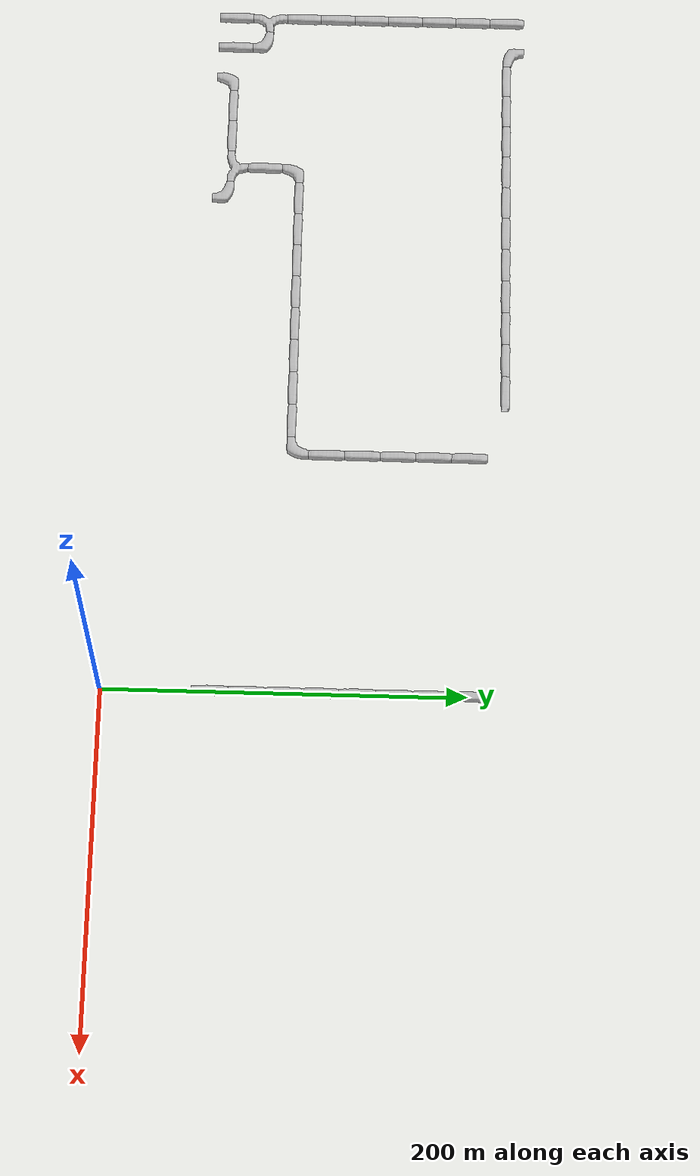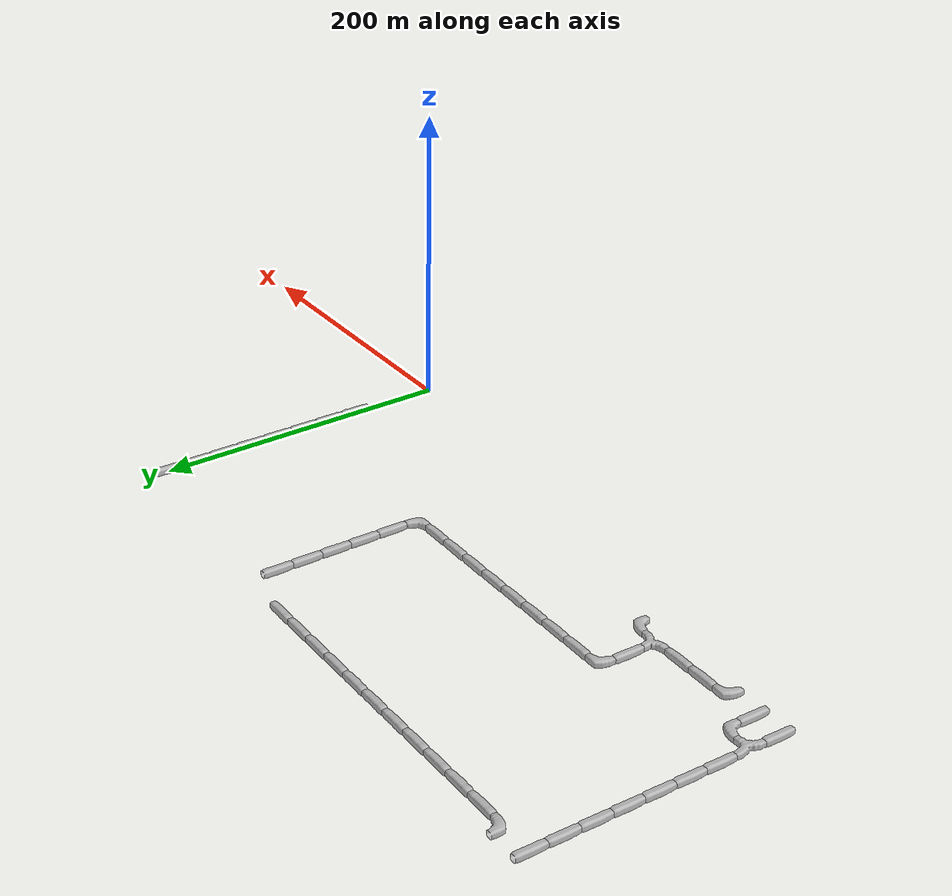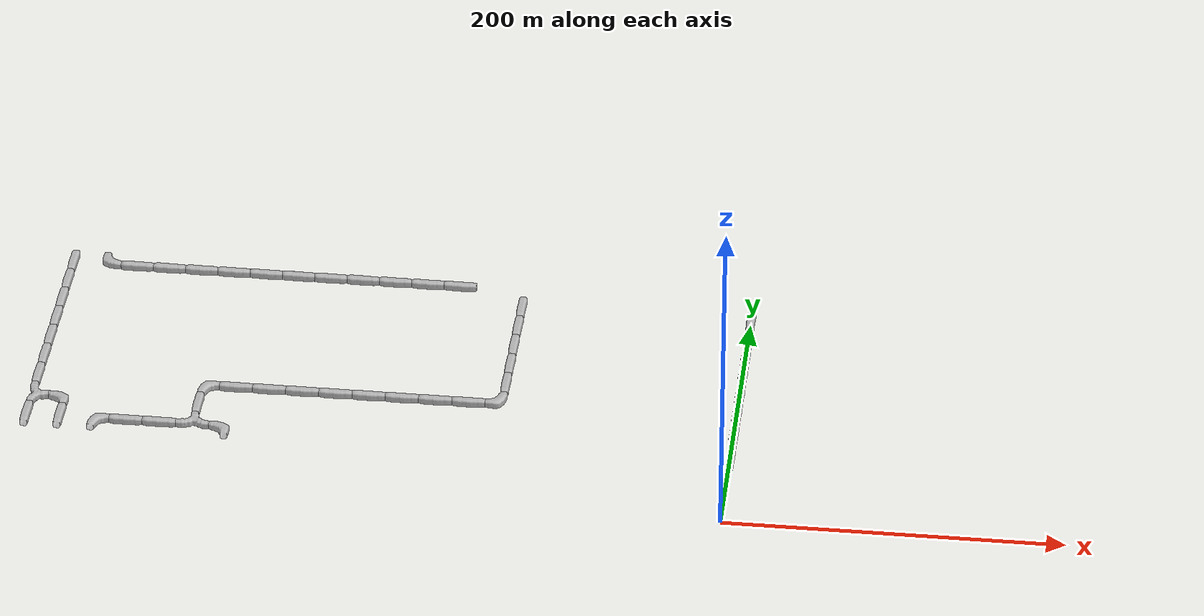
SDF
<sdf version="1.6">
 <world name="cave_16000_4">
  <include>
   <static>true</static>
   <name>cave_-15_3</name>
   <pose>-300 60 0 0 0 3.141592653589793</pose>
   <uri>model://cave_L_20m</uri>
  </include>
  <include>
   <static>true</static>
   <name>cave_-16_3</name>
   <pose>-320 60 0 0 0 0.0</pose>
   <uri>model://cave_3way_20m</uri>
  </include>
  <include>
   <static>true</static>
   <name>cave_-17_3</name>
   <pose>-340 60 0 0 0 1.5707963267948966</pose>
   <uri>model://cave_straight_20m</uri>
  </include>
  <include>
   <static>true</static>
   <name>cave_-18_3</name>
   <pose>-360 60 0 0 0 1.5707963267948966</pose>
   <uri>model://cave_straight_20m</uri>
  </include>
  <include>
   <static>true</static>
   <name>cave_-19_3</name>
   <pose>-380 60 0 0 0 -1.5707963267948966</pose>
   <uri>model://cave_L_20m</uri>
  </include>
  <include>
   <static>true</static>
   <name>cave_-16_4</name>
   <pose>-320 80 0 0 0 0.0</pose>
   <uri>model://cave_straight_20m</uri>
  </include>
  <include>
   <static>true</static>
   <name>cave_-16_5</name>
   <pose>-320 100 0 0 0 -1.5707963267948966</pose>
   <uri>model://cave_L_20m</uri>
  </include>
  <include>
   <static>true</static>
   <name>cave_-15_5</name>
   <pose>-300 100 0 0 0 1.5707963267948966</pose>
   <uri>model://cave_straight_20m</uri>
  </include>
  <include>
   <static>true</static>
   <name>cave_-14_5</name>
   <pose>-280 100 0 0 0 1.5707963267948966</pose>
   <uri>model://cave_straight_20m</uri>
  </include>
  <include>
   <static>true</static>
   <name>cave_-13_5</name>
   <pose>-260 100 0 0 0 1.5707963267948966</pose>
   <uri>model://cave_straight_20m</uri>
  </include>
  <include>
   <static>true</static>
   <name>cave_-12_5</name>
   <pose>-240 100 0 0 0 1.5707963267948966</pose>
   <uri>model://cave_straight_20m</uri>
  </include>
  <include>
   <static>true</static>
   <name>cave_-11_5</name>
   <pose>-220 100 0 0 0 1.5707963267948966</pose>
   <uri>model://cave_straight_20m</uri>
  </include>
  <include>
   <static>true</static>
   <name>cave_-10_5</name>
   <pose>-200 100 0 0 0 1.5707963267948966</pose>
   <uri>model://cave_straight_20m</uri>
  </include>
  <include>
   <static>true</static>
   <name>cave_-9_5</name>
   <pose>-180 100 0 0 0 1.5707963267948966</pose>
   <uri>model://cave_straight_20m</uri>
  </include>
  <include>
   <static>true</static>
   <name>cave_-8_5</name>
   <pose>-160 100 0 0 0 1.5707963267948966</pose>
   <uri>model://cave_straight_20m</uri>
  </include>
  <include>
   <static>true</static>
   <name>cave_-7_5</name>
   <pose>-140 100 0 0 0 1.5707963267948966</pose>
   <uri>model://cave_L_20m</uri>
  </include>
  <include>
   <static>true</static>
   <name>cave_-7_6</name>
   <pose>-140 120 0 0 0 0.0</pose>
   <uri>model://cave_straight_20m</uri>
  </include>
  <include>
   <static>true</static>
   <name>cave_-7_7</name>
   <pose>-140 140 0 0 0 0.0</pose>
   <uri>model://cave_straight_20m</uri>
  </include>
  <include>
   <static>true</static>
   <name>cave_-7_8</name>
   <pose>-140 160 0 0 0 0.0</pose>
   <uri>model://cave_straight_20m</uri>
  </include>
  <include>
   <static>true</static>
   <name>cave_-7_9</name>
   <pose>-140 180 0 0 0 0.0</pose>
   <uri>model://cave_straight_20m</uri>
  </include>
  <include>
   <static>true</static>
   <name>cave_-7_10</name>
   <pose>-140 200 0 0 0 0.0</pose>
   <uri>model://cave_straight_20m</uri>
  </include>
  <include>
   <static>true</static>
   <name>cave_-9_11</name>
   <pose>-180 220 0 0 0 1.5707963267948966</pose>
   <uri>model://cave_straight_20m</uri>
  </include>
  <include>
   <static>true</static>
   <name>cave_-10_11</name>
   <pose>-200 220 0 0 0 1.5707963267948966</pose>
   <uri>model://cave_straight_20m</uri>
  </include>
  <include>
   <static>true</static>
   <name>cave_-11_11</name>
   <pose>-220 220 0 0 0 1.5707963267948966</pose>
   <uri>model://cave_straight_20m</uri>
  </include>
  <include>
   <static>true</static>
   <name>cave_-12_11</name>
   <pose>-240 220 0 0 0 1.5707963267948966</pose>
   <uri>model://cave_straight_20m</uri>
  </include>
  <include>
   <static>true</static>
   <name>cave_-13_11</name>
   <pose>-260 220 0 0 0 1.5707963267948966</pose>
   <uri>model://cave_straight_20m</uri>
  </include>
  <include>
   <static>true</static>
   <name>cave_-14_11</name>
   <pose>-280 220 0 0 0 1.5707963267948966</pose>
   <uri>model://cave_straight_20m</uri>
  </include>
  <include>
   <static>true</static>
   <name>cave_-15_11</name>
   <pose>-300 220 0 0 0 1.5707963267948966</pose>
   <uri>model://cave_straight_20m</uri>
  </include>
  <include>
   <static>true</static>
   <name>cave_-16_11</name>
   <pose>-320 220 0 0 0 1.5707963267948966</pose>
   <uri>model://cave_straight_20m</uri>
  </include>
  <include>
   <static>true</static>
   <name>cave_-17_11</name>
   <pose>-340 220 0 0 0 1.5707963267948966</pose>
   <uri>model://cave_straight_20m</uri>
  </include>
  <include>
   <static>true</static>
   <name>cave_-18_11</name>
   <pose>-360 220 0 0 0 1.5707963267948966</pose>
   <uri>model://cave_straight_20m</uri>
  </include>
  <include>
   <static>true</static>
   <name>cave_-19_11</name>
   <pose>-380 220 0 0 0 1.5707963267948966</pose>
   <uri>model://cave_straight_20m</uri>
  </include>
  <include>
   <static>true</static>
   <name>cave_-20_11</name>
   <pose>-400 220 0 0 0 0.0</pose>
   <uri>model://cave_L_20m</uri>
  </include>
  <include>
   <static>true</static>
   <name>cave_-21_11</name>
   <pose>-420 220 0 0 0 0.0</pose>
   <uri>model://cave_straight_20m</uri>
  </include>
  <include>
   <static>true</static>
   <name>cave_-21_10</name>
   <pose>-420 200 0 0 0 0.0</pose>
   <uri>model://cave_straight_20m</uri>
  </include>
  <include>
   <static>true</static>
   <name>cave_-21_9</name>
   <pose>-420 180 0 0 0 0.0</pose>
   <uri>model://cave_straight_20m</uri>
  </include>
  <include>
   <static>true</static>
   <name>cave_-21_8</name>
   <pose>-420 160 0 0 0 0.0</pose>
   <uri>model://cave_straight_20m</uri>
  </include>
  <include>
   <static>true</static>
   <name>cave_-21_7</name>
   <pose>-420 140 0 0 0 0.0</pose>
   <uri>model://cave_straight_20m</uri>
  </include>
  <include>
   <static>true</static>
   <name>cave_-21_6</name>
   <pose>-420 120 0 0 0 0.0</pose>
   <uri>model://cave_straight_20m</uri>
  </include>
  <include>
   <static>true</static>
   <name>cave_-21_5</name>
   <pose>-420 100 0 0 0 0.0</pose>
   <uri>model://cave_straight_20m</uri>
  </include>
  <include>
   <static>true</static>
   <name>cave_-21_4</name>
   <pose>-420 80 0 0 0 -1.5707963267948966</pose>
   <uri>model://cave_3way_20m</uri>
  </include>
  <include>
   <static>true</static>
   <name>cave_-20_4</name>
   <pose>-400 80 0 0 0 3.141592653589793</pose>
   <uri>model://cave_L_20m</uri>
  </include>
  <include>
   <static>true</static>
   <name>cave_-20_3</name>
   <pose>-400 60 0 0 0 0.0</pose>
   <uri>model://cave_straight_20m</uri>
  </include>
  <include>
   <static>true</static>
   <name>cave_-21_3</name>
   <pose>-420 60 0 0 0 0.0</pose>
   <uri>model://cave_straight_20m</uri>
  </include>
  <include>
   <static>true</static>
   <name>cave_0_3</name>
   <pose>0 60 0 0 0 0.0</pose>
   <uri>model://cave_straight_20m</uri>
  </include>
  <include>
   <static>true</static>
   <name>cave_0_4</name>
   <pose>0 80 0 0 0 0.0</pose>
   <uri>model://cave_straight_20m</uri>
  </include>
  <include>
   <static>true</static>
   <name>cave_0_5</name>
   <pose>0 100 0 0 0 0.0</pose>
   <uri>model://cave_straight_20m</uri>
  </include>
  <include>
   <static>true</static>
   <name>cave_0_6</name>
   <pose>0 120 0 0 0 0.0</pose>
   <uri>model://cave_straight_20m</uri>
  </include>
  <include>
   <static>true</static>
   <name>cave_0_7</name>
   <pose>0 140 0 0 0 0.0</pose>
   <uri>model://cave_straight_20m</uri>
  </include>
  <include>
   <static>true</static>
   <name>cave_0_8</name>
   <pose>0 160 0 0 0 0.0</pose>
   <uri>model://cave_straight_20m</uri>
  </include>
  <include>
   <static>true</static>
   <name>cave_0_9</name>
   <pose>0 180 0 0 0 0.0</pose>
   <uri>model://cave_straight_20m</uri>
  </include>
  <include>
   <static>true</static>
   <name>cave_0_10</name>
   <pose>0 200 0 0 0 0.0</pose>
   <uri>model://cave_straight_20m</uri>
  </include>
 </world>
</sdf>
